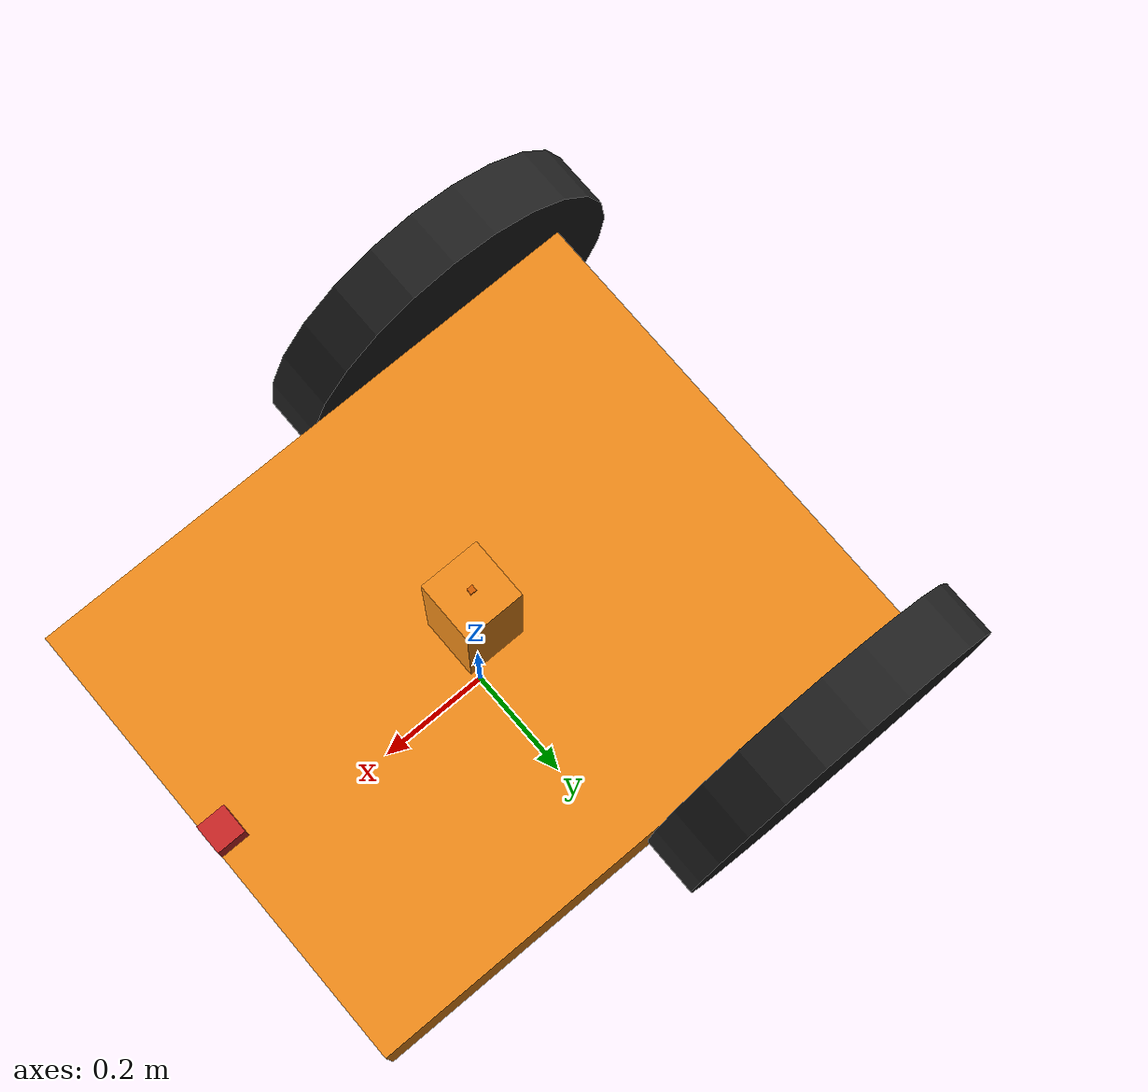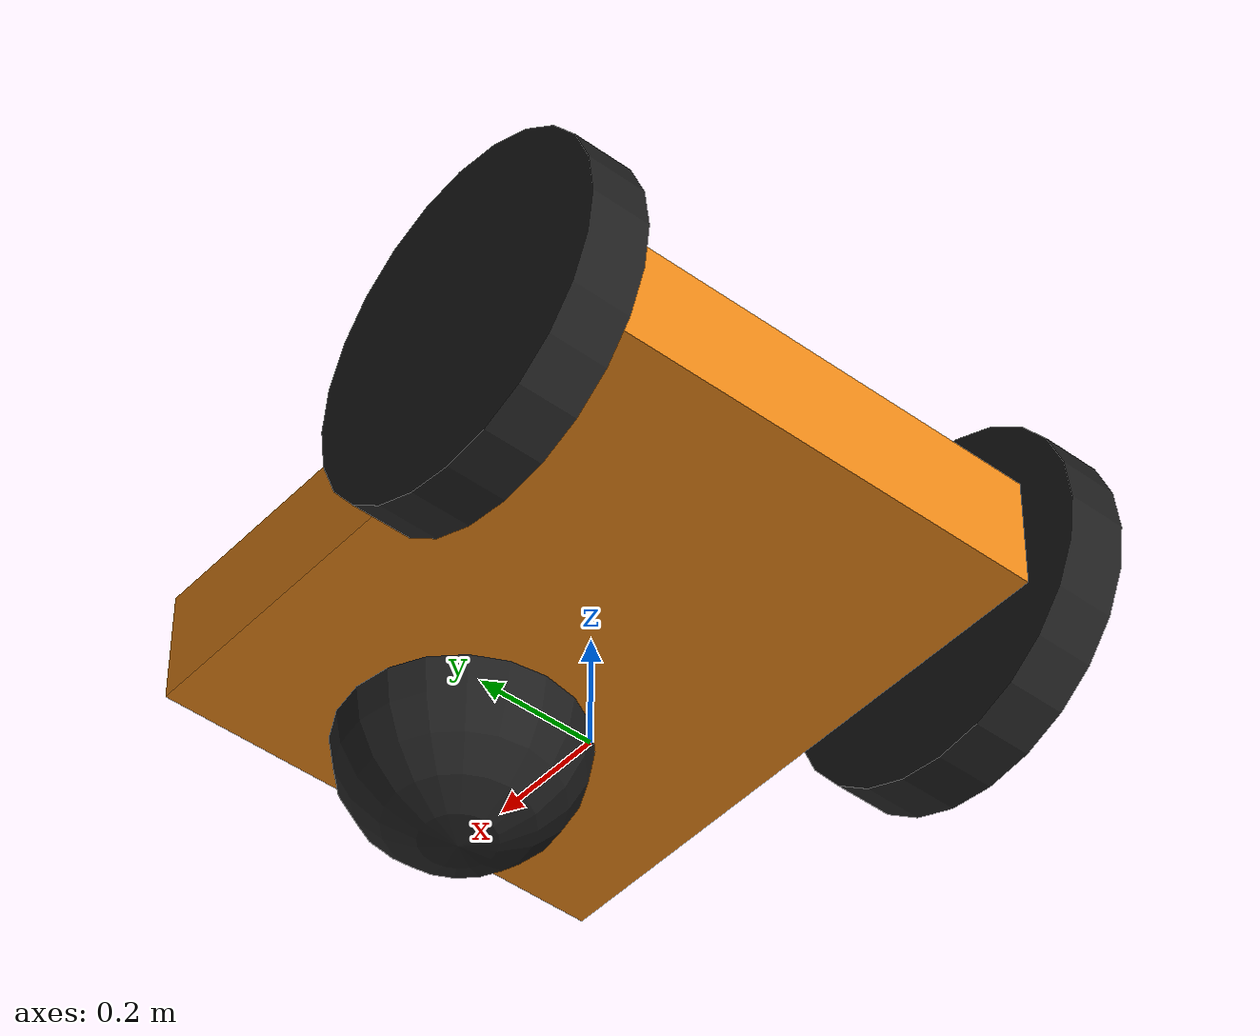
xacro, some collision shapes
<?xml version="1.0"?>
<robot xmlns:xacro="http://www.ros.org/wiki/xacro" name="mapper">

<!-- Including plugins and material files -->
<xacro:include filename="$(find structure)/urdf/materials.gazebo"/>
<xacro:include filename="$(find structure)/urdf/plugins.gazebo"/>

<!-- BASE-FOOTPRINT -->
  <!-- base_footprint is a fictitious link(frame) that is on the ground right below base_link origin -->
<link name="base_footprint">
  <inertial>
    <mass value="0.0001" />
    <origin xyz="0 0 0" rpy="0 0 0"/>
    <inertia ixx="0.0001" ixy="0.0" ixz="0.0"
        iyy="0.0001" iyz="0.0"
        izz="0.0001" />
  </inertial>
  <visual>
      <origin xyz="0 0 0" rpy="0 0 0" />
      <geometry>
          <box size="0.001 0.001 0.001" />
      </geometry>
  </visual>
</link>
<gazebo reference="base_footprint">
  <turnGravityOff>false</turnGravityOff>
</gazebo>
<joint name="base_footprint_joint" type="fixed">
  <origin xyz="0 0 0.3" rpy="0 0 0" />
  <parent link="base_footprint"/>
  <child link="base_link" />
</joint>

<!--  Chassis link -->
    <link name="base_link">
      <inertial>
        <mass value="5"/>
        <origin rpy="0 0 0" xyz="0 0 0"/>
        <inertia ixx="0.166667" ixy="0" ixz="0" iyy="0.166667" iyz="0" izz="0.166667"/>
      </inertial>
        <visual>
            <origin rpy="0  0  0" xyz="0  0  0"/>
            <geometry>
              <box size="1 0.8 0.2"/>
            </geometry>
        </visual>
        <collision name="collision_chassis">
            <origin rpy="0 0 0" xyz="0 0 0"/>
            <geometry>
              <box size="1 0.8 0.2"/>
            </geometry>
        </collision>
    </link>

<!-- Caster wheel -->
    <link name="caster_wheel">
      <collision>
        <origin rpy=" 0 0 0" xyz="0 0 0"/>
        <geometry>
          <sphere radius="0.199"/>
        </geometry>
        <surface>
          <friction>
            <ode>
              <mu>0</mu>
              <mu2>0</mu2>
            </ode>
          </friction>
          <contact>
            <ode>
              <min_depth>0.003</min_depth>
            </ode>
          </contact>
        </surface>
      </collision>
      <visual >
        <origin rpy=" 0 0 0" xyz="0 0 0"/>
        <geometry>
          <sphere radius="0.199"/>
        </geometry>
      </visual>
      <inertial>
        <mass value="0.5"/>
        <origin rpy="0 0 0" xyz="0 0 0"/>
        <inertia ixx="0" ixy="0" ixz="0" iyy="0" iyz="0" izz="0"/>
      </inertial>
    </link>
  <!-- Caster joint -->
    <joint name="caster_wheel_joint" type="continuous">
      <axis xyz="0 1 0" rpy="0 0 0" />
      <parent link="base_link"/>
      <child link="caster_wheel"/>
      <origin xyz="0.3 0 -0.1" rpy="0 0 0"/>
    </joint>

    <!-- Wheel links macro -->
    <xacro:macro name="wheels" params="name">
      <link name="${name}_wheel">
        <inertial>
          <mass value="0.2"/>
          <origin rpy="0 0 0" xyz="0 0 0"/>
          <inertia ixx="0.004666666666666667" ixy="0" ixz="0" iyy="0.004666666666666667" iyz="0" izz="0.009"/>
        </inertial>
        <collision>
          <origin rpy="0 0 0" xyz="0 0 0"/>
          <geometry>
            <cylinder length="0.1" radius="0.3"/>
          </geometry>
        </collision>
        <visual>
          <origin rpy="0 0 0" xyz="0 0 0"/>
          <geometry>
            <cylinder length="0.1" radius="0.3"/>
          </geometry>
        </visual>
      </link>
  </xacro:macro>
  <!-- Wheels -->
  <xacro:wheels name="right"/>
  <xacro:wheels name="left"/>

  <!-- Wheel joints macro -->
<xacro:macro name="wheel_joints" params="name link x y">
    <joint name="joint_${name}_wheel" type="continuous">
        <parent link="base_link"/>
        <child link="${link}"/>
        <origin xyz= "${x} ${y} 0" rpy="1.5708 0 0"/>
        <axis rpy="0 0 0" xyz="0 0 0.3"/>
    </joint>
</xacro:macro>
<!-- Wheel joints -->
<xacro:wheel_joints name="left" link="left_wheel" x="-0.3" y="-0.45"/>
<xacro:wheel_joints name="right" link="right_wheel" x="-0.3" y="0.45"/>

<!-- Hokuyo Laser Link -->
<link name="hokuyo">
<collision>
  <origin xyz="0 0 0" rpy="0 0 0"/>
  <geometry>
    <box size="0.01 0.01 0.01"/>
  </geometry>
</collision>
<visual>
  <origin xyz="0 0 0" rpy="0 0 0"/>
  <geometry>
    <mesh filename="package://structure/meshes/hokuyo.dae"/>
  </geometry>
</visual>
<inertial>
  <mass value="0" />
  <origin xyz="0 0 0" rpy="0 0 0"/>
  <inertia ixx="0" ixy="0" ixz="0" iyy="0" iyz="0" izz="0" />
</inertial>
</link>
<!-- Laser joint -->
<joint name="hokuyo_joint" type="fixed">
  <origin xyz="0 0 0.35" rpy="0 0 0"/>
  <parent link="base_link"/>
  <child link="hokuyo"/>
</joint>

<!-- Lidar stand -->
<link name="stand">
  <visual>
      <origin rpy="0  0  0" xyz="0  0  0"/>
      <geometry>
        <box size="0.1 0.1 0.3"/>
      </geometry>
  </visual>
  <collision>
      <origin rpy="0 0 0" xyz="0 0 0"/>
      <geometry>
        <box size="0.1 0.1 0.3"/>
      </geometry>
  </collision>
  <inertial>
    <mass value="0"/>
    <origin rpy="0 0 0" xyz="0 0 0"/>
    <inertia ixx="0" ixy="0" ixz="0" iyy="0" iyz="0" izz="0"/>
  </inertial>
</link>
<!-- Lidar Stand joint -->
<joint name="stand_joint" type="fixed">
  <origin xyz="0 0 0.2" rpy="0 0 0"/>
  <parent link="base_link"/>
  <child link="stand"/>
</joint>

 <!-- Camera Link -->
  <xacro:property name="camera_link" value="0.05" />
  <link name="camera_link">
    <collision>
      <origin xyz="0 0 0" rpy="0 0 0"/>
      <geometry>
    <box size="${camera_link} ${camera_link} ${camera_link}"/>
      </geometry>
    </collision>
    <visual>
      <origin xyz="0 0 0" rpy="0 0 0"/>
      <geometry>
    <box size="${camera_link} ${camera_link} ${camera_link}"/>
      </geometry>
      <material name="red"/>
    </visual>
    <inertial>
      <mass value="1e-5" />
      <origin xyz="0 0 0" rpy="0 0 0"/>
      <inertia ixx="1e-6" ixy="0" ixz="0" iyy="1e-6" iyz="0" izz="1e-6" />
    </inertial>
  </link>
<!-- Camera joint -->
<joint name="camera_joint" type="fixed">
    <axis xyz="0 1 0" />
    <origin xyz="0.475 0 0.125" rpy="0 0 0"/>
    <parent link="base_link"/>
    <child link="camera_link"/>
</joint>

</robot>
